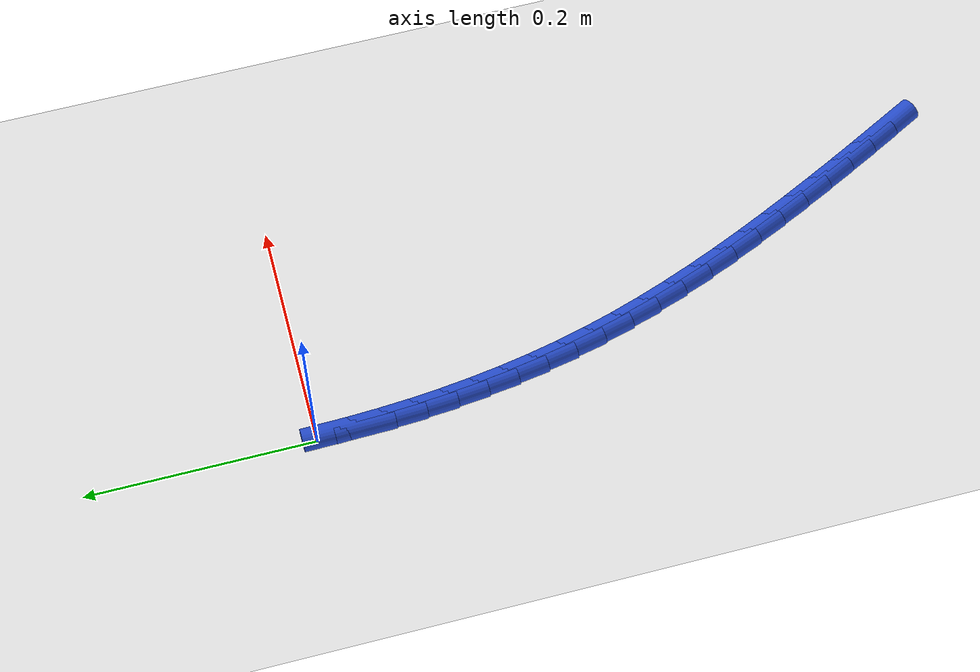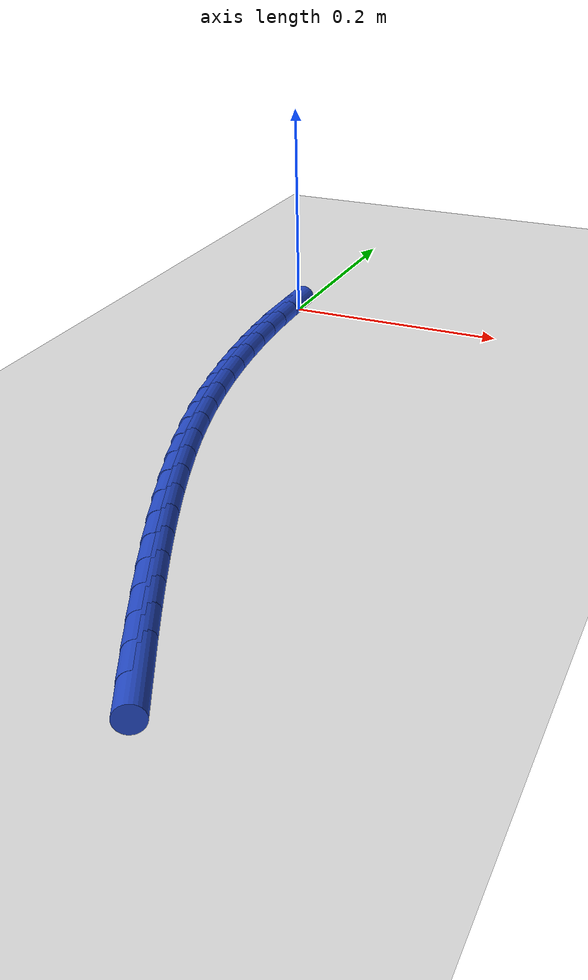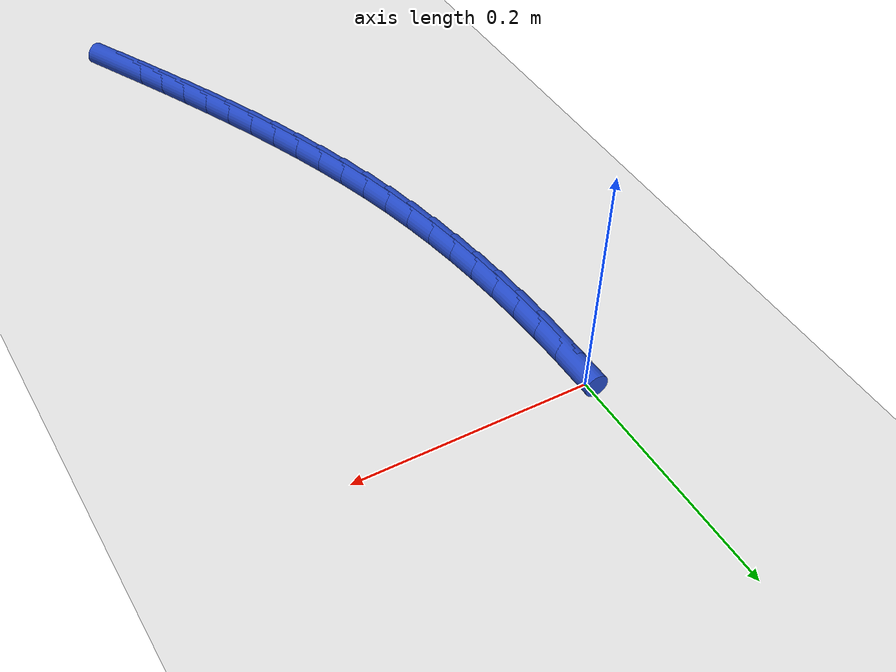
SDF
<sdf version="1.6">
 <world name="default">
  <model name="ground_plane">
   <static>1</static>
   <link name="link">
    <collision name="collision">
     <geometry><plane><normal>0 0 1</normal><size>100 100</size></plane></geometry>
     <surface><friction><ode><mu>100</mu><mu2>50</mu2></ode></friction></surface>
    </collision>
    <visual name="visual">
     <cast_shadows>0</cast_shadows>
     <geometry><plane><normal>0 0 1</normal><size>100 100</size></plane></geometry>
     <material>
      <script><uri>file://media/materials/scripts/gazebo.material</uri><name>Gazebo/WhiteGlow</name></script>
     </material>
    </visual>
   </link>
  </model>
  <model name="line">
   <link name="link_229">
    <pose>0.1550963288631866 -0.5443301809958785 0.01 0 1.57 -1.0977414642931524</pose>
    <collision name="collision">
     <geometry><cylinder><radius>0.01</radius><length>0.08</length></cylinder></geometry>
    </collision>
    <visual name="visual">
     <material>
      <script><name>Gazebo/Blue</name><uri>file://media/materials/scripts/gazebo.material</uri></script>
     </material>
     <geometry><cylinder><radius>0.01</radius><length>0.08</length></cylinder></geometry>
    </visual>
   </link>
   <link name="link_230">
    <pose>0.14290712274496767 -0.5205145320069678 0.01 0 1.57 -1.1077931551038753</pose>
    <collision name="collision">
     <geometry><cylinder><radius>0.01</radius><length>0.08</length></cylinder></geometry>
    </collision>
    <visual name="visual">
     <material>
      <script><name>Gazebo/Blue</name><uri>file://media/materials/scripts/gazebo.material</uri></script>
     </material>
     <geometry><cylinder><radius>0.01</radius><length>0.08</length></cylinder></geometry>
    </visual>
   </link>
   <link name="link_231">
    <pose>0.13091350361715304 -0.49648859819403357 0.01 0 1.57 -1.1168796821713844</pose>
    <collision name="collision">
     <geometry><cylinder><radius>0.01</radius><length>0.08</length></cylinder></geometry>
    </collision>
    <visual name="visual">
     <material>
      <script><name>Gazebo/Blue</name><uri>file://media/materials/scripts/gazebo.material</uri></script>
     </material>
     <geometry><cylinder><radius>0.01</radius><length>0.08</length></cylinder></geometry>
    </visual>
   </link>
   <link name="link_232">
    <pose>0.11907895493946843 -0.4722322453193827 0.01 0 1.57 -1.126458478790832</pose>
    <collision name="collision">
     <geometry><cylinder><radius>0.01</radius><length>0.08</length></cylinder></geometry>
    </collision>
    <visual name="visual">
     <material>
      <script><name>Gazebo/Blue</name><uri>file://media/materials/scripts/gazebo.material</uri></script>
     </material>
     <geometry><cylinder><radius>0.01</radius><length>0.08</length></cylinder></geometry>
    </visual>
   </link>
   <link name="link_233">
    <pose>0.10741616813167822 -0.44773525856179264 0.01 0 1.57 -1.1384903844477978</pose>
    <collision name="collision">
     <geometry><cylinder><radius>0.01</radius><length>0.08</length></cylinder></geometry>
    </collision>
    <visual name="visual">
     <material>
      <script><name>Gazebo/Blue</name><uri>file://media/materials/scripts/gazebo.material</uri></script>
     </material>
     <geometry><cylinder><radius>0.01</radius><length>0.08</length></cylinder></geometry>
    </visual>
   </link>
   <link name="link_234">
    <pose>0.09600322964202271 -0.42300060553072844 0.01 0 1.57 -1.1531273949226886</pose>
    <collision name="collision">
     <geometry><cylinder><radius>0.01</radius><length>0.08</length></cylinder></geometry>
    </collision>
    <visual name="visual">
     <material>
      <script><name>Gazebo/Blue</name><uri>file://media/materials/scripts/gazebo.material</uri></script>
     </material>
     <geometry><cylinder><radius>0.01</radius><length>0.08</length></cylinder></geometry>
    </visual>
   </link>
   <link name="link_235">
    <pose>0.08492274767203115 -0.39803216533765756 0.01 0 1.57 -1.1704015967685477</pose>
    <collision name="collision">
     <geometry><cylinder><radius>0.01</radius><length>0.08</length></cylinder></geometry>
    </collision>
    <visual name="visual">
     <material>
      <script><name>Gazebo/Blue</name><uri>file://media/materials/scripts/gazebo.material</uri></script>
     </material>
     <geometry><cylinder><radius>0.01</radius><length>0.08</length></cylinder></geometry>
    </visual>
   </link>
   <link name="link_236">
    <pose>0.07425733042323274 -0.37283381709404617 0.01 0 1.57 -1.1903579878868185</pose>
    <collision name="collision">
     <geometry><cylinder><radius>0.01</radius><length>0.08</length></cylinder></geometry>
    </collision>
    <visual name="visual">
     <material>
      <script><name>Gazebo/Blue</name><uri>file://media/materials/scripts/gazebo.material</uri></script>
     </material>
     <geometry><cylinder><radius>0.01</radius><length>0.08</length></cylinder></geometry>
    </visual>
   </link>
   <link name="link_237">
    <pose>0.06408958609715686 -0.3474094399113616 0.01 0 1.57 -1.213051051341408</pose>
    <collision name="collision">
     <geometry><cylinder><radius>0.01</radius><length>0.08</length></cylinder></geometry>
    </collision>
    <visual name="visual">
     <material>
      <script><name>Gazebo/Blue</name><uri>file://media/materials/scripts/gazebo.material</uri></script>
     </material>
     <geometry><cylinder><radius>0.01</radius><length>0.08</length></cylinder></geometry>
    </visual>
   </link>
   <link name="link_238">
    <pose>0.05450212289533262 -0.32176291290107034 0.01 0 1.57 -1.2385406716443728</pose>
    <collision name="collision">
     <geometry><cylinder><radius>0.01</radius><length>0.08</length></cylinder></geometry>
    </collision>
    <visual name="visual">
     <material>
      <script><name>Gazebo/Blue</name><uri>file://media/materials/scripts/gazebo.material</uri></script>
     </material>
     <geometry><cylinder><radius>0.01</radius><length>0.08</length></cylinder></geometry>
    </visual>
   </link>
   <link name="link_239">
    <pose>0.045577549019289315 -0.29589811517463915 0.01 0 1.57 -1.2668872042497974</pose>
    <collision name="collision">
     <geometry><cylinder><radius>0.01</radius><length>0.08</length></cylinder></geometry>
    </collision>
    <visual name="visual">
     <material>
      <script><name>Gazebo/Blue</name><uri>file://media/materials/scripts/gazebo.material</uri></script>
     </material>
     <geometry><cylinder><radius>0.01</radius><length>0.08</length></cylinder></geometry>
    </visual>
   </link>
   <link name="link_240">
    <pose>0.03739847267055643 -0.2698189258435359 0.01 0 1.57 -1.2981403219224956</pose>
    <collision name="collision">
     <geometry><cylinder><radius>0.01</radius><length>0.08</length></cylinder></geometry>
    </collision>
    <visual name="visual">
     <material>
      <script><name>Gazebo/Blue</name><uri>file://media/materials/scripts/gazebo.material</uri></script>
     </material>
     <geometry><cylinder><radius>0.01</radius><length>0.08</length></cylinder></geometry>
    </visual>
   </link>
   <link name="link_241">
    <pose>0.03004735960334176 -0.24352924243328813 0.01 0 1.57 -1.3311688252100895</pose>
    <collision name="collision">
     <geometry><cylinder><radius>0.01</radius><length>0.08</length></cylinder></geometry>
    </collision>
    <visual name="visual">
     <material>
      <script><name>Gazebo/Blue</name><uri>file://media/materials/scripts/gazebo.material</uri></script>
     </material>
     <geometry><cylinder><radius>0.01</radius><length>0.08</length></cylinder></geometry>
    </visual>
   </link>
   <link name="link_242">
    <pose>0.023574745723103023 -0.21703709001798252 0.01 0 1.57 -1.363320934809663</pose>
    <collision name="collision">
     <geometry><cylinder><radius>0.01</radius><length>0.08</length></cylinder></geometry>
    </collision>
    <visual name="visual">
     <material>
      <script><name>Gazebo/Blue</name><uri>file://media/materials/scripts/gazebo.material</uri></script>
     </material>
     <geometry><cylinder><radius>0.01</radius><length>0.08</length></cylinder></geometry>
    </visual>
   </link>
   <link name="link_243">
    <pose>0.017959057772205186 -0.19035981517129422 0.01 0 1.57 -1.3942066936742623</pose>
    <collision name="collision">
     <geometry><cylinder><radius>0.01</radius><length>0.08</length></cylinder></geometry>
    </collision>
    <visual name="visual">
     <material>
      <script><name>Gazebo/Blue</name><uri>file://media/materials/scripts/gazebo.material</uri></script>
     </material>
     <geometry><cylinder><radius>0.01</radius><length>0.08</length></cylinder></geometry>
    </visual>
   </link>
   <link name="link_244">
    <pose>0.013168829463297468 -0.16351604333172604 0.01 0 1.57 -1.423809584642199</pose>
    <collision name="collision">
     <geometry><cylinder><radius>0.01</radius><length>0.08</length></cylinder></geometry>
    </collision>
    <visual name="visual">
     <material>
      <script><name>Gazebo/Blue</name><uri>file://media/materials/scripts/gazebo.material</uri></script>
     </material>
     <geometry><cylinder><radius>0.01</radius><length>0.08</length></cylinder></geometry>
    </visual>
   </link>
   <link name="link_245">
    <pose>0.009172594509029089 -0.13652439993778084 0.01 0 1.57 -1.4521234769622187</pose>
    <collision name="collision">
     <geometry><cylinder><radius>0.01</radius><length>0.08</length></cylinder></geometry>
    </collision>
    <visual name="visual">
     <material>
      <script><name>Gazebo/Blue</name><uri>file://media/materials/scripts/gazebo.material</uri></script>
     </material>
     <geometry><cylinder><radius>0.01</radius><length>0.08</length></cylinder></geometry>
    </visual>
   </link>
   <link name="link_246">
    <pose>0.005938886622049275 -0.10940351042796154 0.01 0 1.57 -1.4791511437030553</pose>
    <collision name="collision">
     <geometry><cylinder><radius>0.01</radius><length>0.08</length></cylinder></geometry>
    </collision>
    <visual name="visual">
     <material>
      <script><name>Gazebo/Blue</name><uri>file://media/materials/scripts/gazebo.material</uri></script>
     </material>
     <geometry><cylinder><radius>0.01</radius><length>0.08</length></cylinder></geometry>
    </visual>
   </link>
   <link name="link_247">
    <pose>0.0034362395150072376 -0.0821720002407709 0.01 0 1.57 -1.5049027952703047</pose>
    <collision name="collision">
     <geometry><cylinder><radius>0.01</radius><length>0.08</length></cylinder></geometry>
    </collision>
    <visual name="visual">
     <material>
      <script><name>Gazebo/Blue</name><uri>file://media/materials/scripts/gazebo.material</uri></script>
     </material>
     <geometry><cylinder><radius>0.01</radius><length>0.08</length></cylinder></geometry>
    </visual>
   </link>
   <link name="link_248">
    <pose>0.0016331869005522 -0.05484849481471185 0.01 0 1.57 -1.5293946753661307</pose>
    <collision name="collision">
     <geometry><cylinder><radius>0.01</radius><length>0.08</length></cylinder></geometry>
    </collision>
    <visual name="visual">
     <material>
      <script><name>Gazebo/Blue</name><uri>file://media/materials/scripts/gazebo.material</uri></script>
     </material>
     <geometry><cylinder><radius>0.01</radius><length>0.08</length></cylinder></geometry>
    </visual>
   </link>
   <link name="link_249">
    <pose>0.0004982624913333822 -0.027451619588287214 0.01 0 1.57 -1.5526477514745824</pose>
    <collision name="collision">
     <geometry><cylinder><radius>0.01</radius><length>0.08</length></cylinder></geometry>
    </collision>
    <visual name="visual">
     <material>
      <script><name>Gazebo/Blue</name><uri>file://media/materials/scripts/gazebo.material</uri></script>
     </material>
     <geometry><cylinder><radius>0.01</radius><length>0.08</length></cylinder></geometry>
    </visual>
   </link>
  </model>
 </world>
</sdf>
